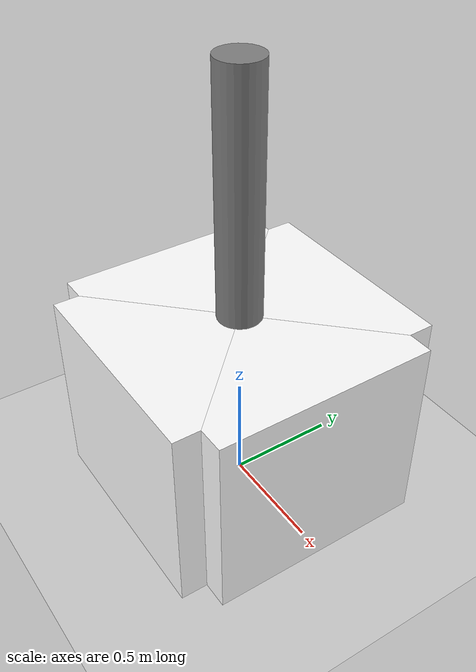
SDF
<?xml version="1.0" ?>
<sdf version="1.6">
  <world name="pole">
    <!-- Ground plane -->
    <include>
      <uri>model://ground_plane</uri>
    </include>

    <!-- Sun light -->
    <include>
      <uri>model://sun</uri>
    </include>

    <!-- Pole at the center of the world -->
    <model name="pole">
      <static>true</static>
      <link name="pole_link">
        <visual name="pole_visual">
          <geometry>
            <cylinder>
              <radius>0.1</radius>  <!-- Pole radius -->
              <length>2.0</length>  <!-- Pole height -->
            </cylinder>
          </geometry>
          <material>
            <ambient>0.5 0.5 0.5 1</ambient>
          </material>
        </visual>
        <collision name="pole_collision">
          <geometry>
            <cylinder>
              <radius>0.1</radius>
              <length>2.0</length>
            </cylinder>
          </geometry>
        </collision>
      </link>
      <pose>0 0 1 0 0 0</pose>
    </model>

    <!-- Aruco Markers (Now Fixed and Properly Attached) -->
    <!-- Front (Facing X+) -->
    <model name="aruco_marker_front">
      <pose>0.12 0 0.4 -1.57 0 -1.57</pose>  <!-- 12cm in front of the pole -->
      <include>
        <uri>model://aruco_visual_marker_0</uri>
      </include>
    </model>

    <!-- Back (Facing X-) -->
    <model name="aruco_marker_back">
      <pose>-0.12 0 0.4 1.57 0 -1.57</pose>  <!-- 12cm behind the pole -->
      <include>
        <uri>model://aruco_visual_marker_1</uri>
      </include>
    </model>

    <!-- Left (Facing Y+) -->
    <model name="aruco_marker_left">
      <pose>0 0.12 0.4 -1.57 0 0</pose>  <!-- 12cm to the left of the pole -->
      <include>
        <uri>model://aruco_visual_marker_2</uri>
      </include>
    </model>

    <!-- Right (Facing Y-) -->
    <model name="aruco_marker_right">
      <pose>0 -0.12 0.4 -1.57 0 3.14</pose>  <!-- 12cm to the right of the pole -->
      <include>
        <uri>model://aruco_visual_marker_3</uri>
      </include>
    </model>

    <plugin name="gazebo_ros_state" filename="libgazebo_ros_state.so">
    <ros>
    <namespace>/gazebo</namespace>
    <argument>use_sim_time</argument>
    </ros>
</plugin>

  </world>
</sdf>

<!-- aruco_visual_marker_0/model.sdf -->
<sdf version='1.5'>
  <model name='aruco_visual_marker_0'>

    <link name='marker'>
      <pose frame=''>0 0 0 0 0 0</pose>
      <visual name='visual'>
        <geometry>
          <box>
            <size>1 1 1</size>
          </box>
        </geometry>
        <material>
          <script>
            <uri>model://aruco_visual_marker_0/materials/scripts</uri>
            <uri>model://aruco_visual_marker_0/materials/textures</uri>
            <name>ArucoVisualMarker0/Marker</name>
          </script>
          <ambient>1 1 1 1</ambient>
          <diffuse>1 1 1 1</diffuse>
          <specular>0 0 0 1</specular>
          <emissive>1 1 1 0</emissive>
          <shader type='vertex'>
            <normal_map>__default__</normal_map>
          </shader>
        </material>
        <pose frame=''>0 0 0 0 -0 0</pose>
        <cast_shadows>1</cast_shadows>
        <transparency>0</transparency>
      </visual>
      <collision name='collision'>
        <laser_retro>0</laser_retro>
        <max_contacts>10</max_contacts>
        <pose frame=''>0 0 0 0 -0 0</pose>
        <geometry>
          <box>
            <size>1 1 1</size>
          </box>
        </geometry>
      </collision>
    </link>

    <static>1</static>
    <allow_auto_disable>1</allow_auto_disable>

  </model>
</sdf>

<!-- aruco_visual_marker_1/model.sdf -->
<sdf version='1.5'>
  <model name='aruco_visual_marker_1'>

    <link name='marker'>
      <pose frame=''>0 0 0 0 0 0</pose>
      <visual name='visual'>
        <geometry>
          <box>
            <size>1 1 1</size>
          </box>
        </geometry>
        <material>
          <script>
            <uri>model://aruco_visual_marker_1/materials/scripts</uri>
            <uri>model://aruco_visual_marker_1/materials/textures</uri>
            <name>ArucoVisualMarker1/Marker</name>
          </script>
          <ambient>1 1 1 1</ambient>
          <diffuse>1 1 1 1</diffuse>
          <specular>0 0 0 1</specular>
          <emissive>1 1 1 0</emissive>
          <shader type='vertex'>
            <normal_map>__default__</normal_map>
          </shader>
        </material>
        <pose frame=''>0 0 0 0 -0 0</pose>
        <cast_shadows>1</cast_shadows>
        <transparency>0</transparency>
      </visual>
      <collision name='collision'>
        <laser_retro>0</laser_retro>
        <max_contacts>10</max_contacts>
        <pose frame=''>0 0 0 0 -0 0</pose>
        <geometry>
          <box>
            <size>1 1 1</size>
          </box>
        </geometry>
      </collision>
    </link>

    <static>1</static>
    <allow_auto_disable>1</allow_auto_disable>

  </model>
</sdf>

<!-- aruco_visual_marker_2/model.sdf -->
<sdf version='1.5'>
  <model name='aruco_visual_marker_2'>

    <link name='marker'>
      <pose frame=''>0 0 0 0 0 0</pose>
      <visual name='visual'>
        <geometry>
          <box>
            <size>1 1 1</size>
          </box>
        </geometry>
        <material>
          <script>
            <uri>model://aruco_visual_marker_2/materials/scripts</uri>
            <uri>model://aruco_visual_marker_2/materials/textures</uri>
            <name>ArucoVisualMarker2/Marker</name>
          </script>
          <ambient>1 1 1 1</ambient>
          <diffuse>1 1 1 1</diffuse>
          <specular>0 0 0 1</specular>
          <emissive>1 1 1 0</emissive>
          <shader type='vertex'>
            <normal_map>__default__</normal_map>
          </shader>
        </material>
        <pose frame=''>0 0 0 0 -0 0</pose>
        <cast_shadows>1</cast_shadows>
        <transparency>0</transparency>
      </visual>
      <collision name='collision'>
        <laser_retro>0</laser_retro>
        <max_contacts>10</max_contacts>
        <pose frame=''>0 0 0 0 -0 0</pose>
        <geometry>
          <box>
            <size>1 1 1</size>
          </box>
        </geometry>
      </collision>
    </link>

    <static>1</static>
    <allow_auto_disable>1</allow_auto_disable>

  </model>
</sdf>

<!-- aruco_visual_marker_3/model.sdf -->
<sdf version='1.5'>
  <model name='aruco_visual_marker_3'>

    <link name='marker'>
      <pose frame=''>0 0 0 0 0 0</pose>
      <visual name='visual'>
        <geometry>
          <box>
            <size>1 1 1</size>
          </box>
        </geometry>
        <material>
          <script>
            <uri>model://aruco_visual_marker_3/materials/scripts</uri>
            <uri>model://aruco_visual_marker_3/materials/textures</uri>
            <name>ArucoVisualMarker3/Marker</name>
          </script>
          <ambient>1 1 1 1</ambient>
          <diffuse>1 1 1 1</diffuse>
          <specular>0 0 0 1</specular>
          <emissive>1 1 1 0</emissive>
          <shader type='vertex'>
            <normal_map>__default__</normal_map>
          </shader>
        </material>
        <pose frame=''>0 0 0 0 -0 0</pose>
        <cast_shadows>1</cast_shadows>
        <transparency>0</transparency>
      </visual>
      <collision name='collision'>
        <laser_retro>0</laser_retro>
        <max_contacts>10</max_contacts>
        <pose frame=''>0 0 0 0 -0 0</pose>
        <geometry>
          <box>
            <size>1 1 1</size>
          </box>
        </geometry>
      </collision>
    </link>

    <static>1</static>
    <allow_auto_disable>1</allow_auto_disable>

  </model>
</sdf>
